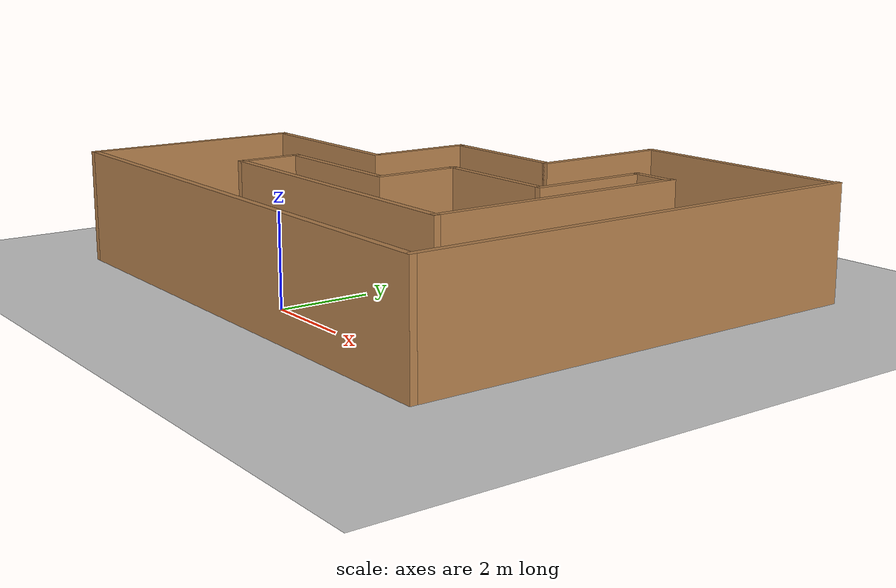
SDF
<sdf version="1.4">
 <world name="default">
  <light name="sun" type="directional">
   <pose>0 0 10 0 -0 0</pose>
   <diffuse>0.8 0.8 0.8 1</diffuse>
   <specular>0.2 0.2 0.2 1</specular>
   <attenuation>
    <range>1000</range>
    <constant>0.9</constant>
    <linear>0.01</linear>
    <quadratic>0.001</quadratic>
   </attenuation>
   <direction>0.5 0.1 -0.9</direction>
  </light>
  <model name="ground_plane">
   <static>1</static>
   <link name="link">
    <collision name="collision">
     <geometry><plane><normal>0 0 1</normal><size>100 100</size></plane></geometry>
     <surface><friction><ode><mu>100</mu><mu2>50</mu2></ode></friction></surface>
    </collision>
    <visual name="visual">
     <cast_shadows>0</cast_shadows>
     <geometry><plane><normal>0 0 1</normal><size>100 100</size></plane></geometry>
     <material>
      <script><uri>file://media/materials/scripts/gazebo.material</uri><name>Gazebo/Grey</name></script>
     </material>
    </visual>
    <velocity_decay><linear>0</linear><angular>0</angular></velocity_decay>
   </link>
  </model>
  <scene><ambient>0.4 0.4 0.4 1</ambient><background>0.7 0.7 0.7 1</background><shadows>0</shadows></scene>
  <physics type="ode">
   <max_step_size>0.01</max_step_size>
   <real_time_factor>1</real_time_factor>
   <real_time_update_rate>0</real_time_update_rate>
   <gravity>0 0 -9.8</gravity>
  </physics>
  <include><uri>model://Circle_custom</uri><pose>0 4 0 0 0 0</pose></include>
 </world>
</sdf>

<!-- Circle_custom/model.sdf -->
<sdf version='1.6'>
  <model name='Circle_custom'>
    <pose frame=''>-5.12004 0.868031 0 0 -0 0</pose>
    <link name='Wall_0'>
      <collision name='Wall_0_Collision'>
        <geometry>
          <box>
            <size>6 0.15 2.5</size>
          </box>
        </geometry>
        <pose frame=''>0 0 1.25 0 -0 0</pose>
      </collision>
      <visual name='Wall_0_Visual'>
        <pose frame=''>0 0 1.25 0 -0 0</pose>
        <geometry>
          <box>
            <size>6 0.15 2.5</size>
          </box>
        </geometry>
        <material>
          <script>
            <uri>file://media/materials/scripts/gazebo.material</uri>
            <name>Gazebo/Wood</name>
          </script>
          <ambient>1 1 1 1</ambient>
        </material>
        <meta>
          <layer>0</layer>
        </meta>
      </visual>
      <pose frame=''>3.99105 -0.187218 0 0 -0 -1.5708</pose>
    </link>
    <link name='Wall_10'>
      <collision name='Wall_10_Collision'>
        <geometry>
          <box>
            <size>2.5 0.15 2.5</size>
          </box>
        </geometry>
        <pose frame=''>0 0 1.25 0 -0 0</pose>
      </collision>
      <visual name='Wall_10_Visual'>
        <pose frame=''>0 0 1.25 0 -0 0</pose>
        <geometry>
          <box>
            <size>2.5 0.15 2.5</size>
          </box>
        </geometry>
        <material>
          <script>
            <uri>file://media/materials/scripts/gazebo.material</uri>
            <name>Gazebo/Wood</name>
          </script>
          <ambient>1 1 1 1</ambient>
        </material>
        <meta>
          <layer>0</layer>
        </meta>
      </visual>
      <pose frame=''>-2.075 0.85 0 0 -0 1.5708</pose>
    </link>
    <link name='Wall_11'>
      <collision name='Wall_11_Collision'>
        <geometry>
          <box>
            <size>3.25 0.15 2.5</size>
          </box>
        </geometry>
        <pose frame=''>0 0 1.25 0 -0 0</pose>
      </collision>
      <visual name='Wall_11_Visual'>
        <pose frame=''>0 0 1.25 0 -0 0</pose>
        <geometry>
          <box>
            <size>3.25 0.15 2.5</size>
          </box>
        </geometry>
        <material>
          <script>
            <uri>file://media/materials/scripts/gazebo.material</uri>
            <name>Gazebo/Wood</name>
          </script>
          <ambient>1 1 1 1</ambient>
        </material>
        <meta>
          <layer>0</layer>
        </meta>
      </visual>
      <pose frame=''>-0.525 2.025 0 0 -0 0</pose>
    </link>
    <link name='Wall_13'>
      <collision name='Wall_13_Collision'>
        <geometry>
          <box>
            <size>3.25 0.15 2.5</size>
          </box>
        </geometry>
        <pose frame=''>0 0 1.25 0 -0 0</pose>
      </collision>
      <visual name='Wall_13_Visual'>
        <pose frame=''>0 0 1.25 0 -0 0</pose>
        <geometry>
          <box>
            <size>3.25 0.15 2.5</size>
          </box>
        </geometry>
        <material>
          <script>
            <uri>file://media/materials/scripts/gazebo.material</uri>
            <name>Gazebo/Wood</name>
          </script>
          <ambient>1 1 1 1</ambient>
        </material>
        <meta>
          <layer>0</layer>
        </meta>
      </visual>
      <pose frame=''>1.025 3.575 0 0 -0 1.5708</pose>
    </link>
    <link name='Wall_14'>
      <collision name='Wall_14_Collision'>
        <geometry>
          <box>
            <size>5.25 0.15 2.5</size>
          </box>
        </geometry>
        <pose frame=''>0 0 1.25 0 -0 0</pose>
      </collision>
      <visual name='Wall_14_Visual'>
        <pose frame=''>0 0 1.25 0 -0 0</pose>
        <geometry>
          <box>
            <size>5.25 0.15 2.5</size>
          </box>
        </geometry>
        <material>
          <script>
            <uri>file://media/materials/scripts/gazebo.material</uri>
            <name>Gazebo/Wood</name>
          </script>
          <ambient>1 1 1 1</ambient>
        </material>
        <meta>
          <layer>0</layer>
        </meta>
      </visual>
      <pose frame=''>3.575 5.125 0 0 -0 0</pose>
    </link>
    <link name='Wall_16'>
      <collision name='Wall_16_Collision'>
        <geometry>
          <box>
            <size>7.25 0.15 2.5</size>
          </box>
        </geometry>
        <pose frame=''>0 0 1.25 0 -0 0</pose>
      </collision>
      <visual name='Wall_16_Visual'>
        <pose frame=''>0 0 1.25 0 -0 0</pose>
        <geometry>
          <box>
            <size>7.25 0.15 2.5</size>
          </box>
        </geometry>
        <material>
          <script>
            <uri>file://media/materials/scripts/gazebo.material</uri>
            <name>Gazebo/Wood</name>
          </script>
          <ambient>1 1 1 1</ambient>
        </material>
        <meta>
          <layer>0</layer>
        </meta>
      </visual>
      <pose frame=''>0.441047 -3.11222 0 0 -0 3.14159</pose>
    </link>
    <link name='Wall_18'>
      <collision name='Wall_18_Collision'>
        <geometry>
          <box>
            <size>1.5 0.15 2.5</size>
          </box>
        </geometry>
        <pose frame=''>0 0 1.25 0 -0 0</pose>
      </collision>
      <visual name='Wall_18_Visual'>
        <pose frame=''>0 0 1.25 0 -0 0</pose>
        <geometry>
          <box>
            <size>1.5 0.15 2.5</size>
          </box>
        </geometry>
        <material>
          <script>
            <uri>file://media/materials/scripts/gazebo.material</uri>
            <name>Gazebo/Wood</name>
          </script>
          <ambient>1 1 1 1</ambient>
        </material>
        <meta>
          <layer>0</layer>
        </meta>
      </visual>
      <pose frame=''>-3.10895 -2.43722 0 0 -0 1.5708</pose>
    </link>
    <link name='Wall_19'>
      <collision name='Wall_19_Collision'>
        <geometry>
          <box>
            <size>3.5 0.15 2.5</size>
          </box>
        </geometry>
        <pose frame=''>0 0 1.25 0 -0 0</pose>
      </collision>
      <visual name='Wall_19_Visual'>
        <pose frame=''>0 0 1.25 0 -0 0</pose>
        <geometry>
          <box>
            <size>3.5 0.15 2.5</size>
          </box>
        </geometry>
        <material>
          <script>
            <uri>file://media/materials/scripts/gazebo.material</uri>
            <name>Gazebo/Wood</name>
          </script>
          <ambient>1 1 1 1</ambient>
        </material>
        <meta>
          <layer>0</layer>
        </meta>
      </visual>
      <pose frame=''>-1.43395 -1.76222 0 0 -0 0</pose>
    </link>
    <link name='Wall_20'>
      <collision name='Wall_20_Collision'>
        <geometry>
          <box>
            <size>2 0.15 2.5</size>
          </box>
        </geometry>
        <pose frame=''>0 0 1.25 0 -0 0</pose>
      </collision>
      <visual name='Wall_20_Visual'>
        <pose frame=''>0 0 1.25 0 -0 0</pose>
        <geometry>
          <box>
            <size>2 0.15 2.5</size>
          </box>
        </geometry>
        <material>
          <script>
            <uri>file://media/materials/scripts/gazebo.material</uri>
            <name>Gazebo/Wood</name>
          </script>
          <ambient>1 1 1 1</ambient>
        </material>
        <meta>
          <layer>0</layer>
        </meta>
      </visual>
      <pose frame=''>0.241047 -0.837218 0 0 -0 1.5708</pose>
    </link>
    <link name='Wall_21'>
      <collision name='Wall_21_Collision'>
        <geometry>
          <box>
            <size>3 0.15 2.5</size>
          </box>
        </geometry>
        <pose frame=''>0 0 1.25 0 -0 0</pose>
      </collision>
      <visual name='Wall_21_Visual'>
        <pose frame=''>0 0 1.25 0 -0 0</pose>
        <geometry>
          <box>
            <size>3 0.15 2.5</size>
          </box>
        </geometry>
        <material>
          <script>
            <uri>file://media/materials/scripts/gazebo.material</uri>
            <name>Gazebo/Wood</name>
          </script>
          <ambient>1 1 1 1</ambient>
        </material>
        <meta>
          <layer>0</layer>
        </meta>
      </visual>
      <pose frame=''>1.66605 0.087782 0 0 -0 0</pose>
    </link>
    <link name='Wall_23'>
      <collision name='Wall_23_Collision'>
        <geometry>
          <box>
            <size>2.75 0.15 2.5</size>
          </box>
        </geometry>
        <pose frame=''>0 0 1.25 0 -0 0</pose>
      </collision>
      <visual name='Wall_23_Visual'>
        <pose frame=''>0 0 1.25 0 -0 0</pose>
        <geometry>
          <box>
            <size>2.75 0.15 2.5</size>
          </box>
        </geometry>
        <material>
          <script>
            <uri>file://media/materials/scripts/gazebo.material</uri>
            <name>Gazebo/Wood</name>
          </script>
          <ambient>1 1 1 1</ambient>
        </material>
        <meta>
          <layer>0</layer>
        </meta>
      </visual>
      <pose frame=''>3.09105 1.38778 0 0 -0 1.5708</pose>
    </link>
    <link name='Wall_24'>
      <collision name='Wall_24_Collision'>
        <geometry>
          <box>
            <size>1 0.15 2.5</size>
          </box>
        </geometry>
        <pose frame=''>0 0 1.25 0 -0 0</pose>
      </collision>
      <visual name='Wall_24_Visual'>
        <pose frame=''>0 0 1.25 0 -0 0</pose>
        <geometry>
          <box>
            <size>1 0.15 2.5</size>
          </box>
        </geometry>
        <material>
          <script>
            <uri>file://media/materials/scripts/gazebo.material</uri>
            <name>Gazebo/Wood</name>
          </script>
          <ambient>1 1 1 1</ambient>
        </material>
        <meta>
          <layer>0</layer>
        </meta>
      </visual>
      <pose frame=''>3.51605 2.68778 0 0 -0 0</pose>
    </link>
    <link name='Wall_4'>
      <collision name='Wall_4_Collision'>
        <geometry>
          <box>
            <size>10.5 0.15 2.5</size>
          </box>
        </geometry>
        <pose frame=''>0 0 1.25 0 -0 0</pose>
      </collision>
      <visual name='Wall_4_Visual'>
        <pose frame=''>0 0 1.25 0 -0 0</pose>
        <geometry>
          <box>
            <size>10.5 0.15 2.5</size>
          </box>
        </geometry>
        <material>
          <script>
            <uri>file://media/materials/scripts/gazebo.material</uri>
            <name>Gazebo/Wood</name>
          </script>
          <ambient>1 1 1 1</ambient>
        </material>
        <meta>
          <layer>0</layer>
        </meta>
      </visual>
      <pose frame=''>6.175 -0 0 0 -0 -1.5708</pose>
    </link>
    <link name='Wall_6'>
      <collision name='Wall_6_Collision'>
        <geometry>
          <box>
            <size>12.5 0.15 2.5</size>
          </box>
        </geometry>
        <pose frame=''>0 0 1.25 0 -0 0</pose>
      </collision>
      <visual name='Wall_6_Visual'>
        <pose frame=''>0 0 1.25 0 -0 0</pose>
        <geometry>
          <box>
            <size>12.5 0.15 2.5</size>
          </box>
        </geometry>
        <material>
          <script>
            <uri>file://media/materials/scripts/gazebo.material</uri>
            <name>Gazebo/Wood</name>
          </script>
          <ambient>1 1 1 1</ambient>
        </material>
        <meta>
          <layer>0</layer>
        </meta>
      </visual>
      <pose frame=''>-0 -5.175 0 0 -0 3.14159</pose>
    </link>
    <link name='Wall_7'>
      <collision name='Wall_7_Collision'>
        <geometry>
          <box>
            <size>5 0.15 2.5</size>
          </box>
        </geometry>
        <pose frame=''>0 0 1.25 0 -0 0</pose>
      </collision>
      <visual name='Wall_7_Visual'>
        <pose frame=''>0 0 1.25 0 -0 0</pose>
        <geometry>
          <box>
            <size>5 0.15 2.5</size>
          </box>
        </geometry>
        <material>
          <script>
            <uri>file://media/materials/scripts/gazebo.material</uri>
            <name>Gazebo/Wood</name>
          </script>
          <ambient>1 1 1 1</ambient>
        </material>
        <meta>
          <layer>0</layer>
        </meta>
      </visual>
      <pose frame=''>-6.175 -2.75 0 0 -0 1.5708</pose>
    </link>
    <link name='Wall_8'>
      <collision name='Wall_8_Collision'>
        <geometry>
          <box>
            <size>4.25 0.15 2.5</size>
          </box>
        </geometry>
        <pose frame=''>0 0 1.25 0 -0 0</pose>
      </collision>
      <visual name='Wall_8_Visual'>
        <pose frame=''>0 0 1.25 0 -0 0</pose>
        <geometry>
          <box>
            <size>4.25 0.15 2.5</size>
          </box>
        </geometry>
        <material>
          <script>
            <uri>file://media/materials/scripts/gazebo.material</uri>
            <name>Gazebo/Wood</name>
          </script>
          <ambient>1 1 1 1</ambient>
        </material>
        <meta>
          <layer>0</layer>
        </meta>
      </visual>
      <pose frame=''>-4.125 -0.325 0 0 -0 0</pose>
    </link>
    <static>1</static>
  </model>
</sdf>
